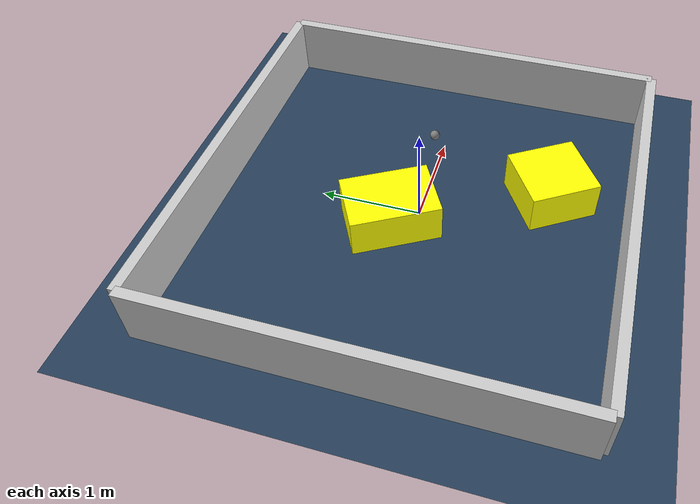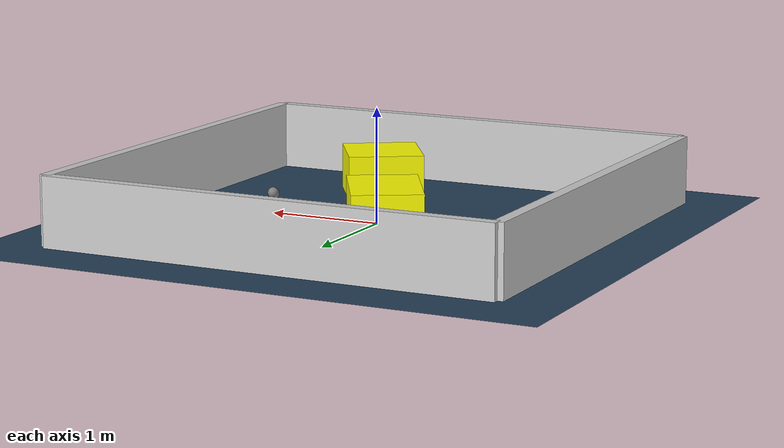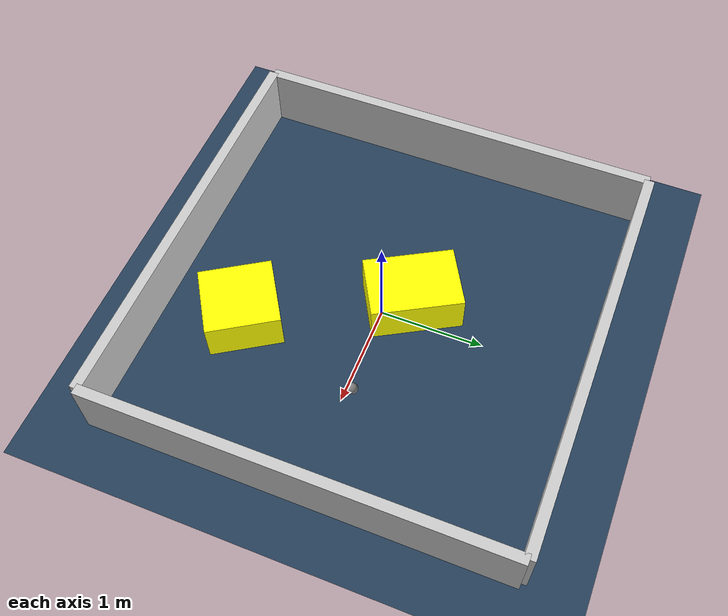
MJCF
<?xml version="1.0" ?>
<mujoco model="generated_environment">
  <option timestep="0.01" integrator="RK4" cone="elliptic"/>
  <default>
    <geom density="1"/>
  </default>
  <asset>
    <texture builtin="gradient" height="3072" rgb1="0.3 0.5 0.7" rgb2="0 0 0" type="skybox" width="512"/>
    <texture builtin="checker" height="300" mark="edge" markrgb="0.8 0.8 0.8" name="groundplane" rgb1="0.2 0.3 0.4" rgb2="0.1 0.2 0.3" type="2d" width="300"/>
    <material name="groundplane" reflectance="0.2" texrepeat="5 5" texture="groundplane" texuniform="true"/>
    <material name="robot" rgba="0.0 1.0 0.0 1"/>
  </asset>
  <worldbody>
    <light dir="0 0 -1" directional="true" pos="0 0 1.5"/>
    <geom condim="4" friction="1.0 0.005 0.001" material="groundplane" name="floor" size="0 0 0.05" type="plane"/>
    <body name="walls">
      <geom name="wall_1" condim="4" pos="-2.0 0.0 0.3" rgba="0.800000011920929 0.800000011920929 0.800000011920929 1.0" size="0.05 2.0 0.3" type="box"/>
      <geom name="wall_2" condim="4" pos="2.0 0.0 0.3" rgba="0.800000011920929 0.800000011920929 0.800000011920929 1.0" size="0.05 2.0 0.3" type="box"/>
      <geom name="wall_3" condim="4" pos="0.0 -2.0 0.3" rgba="0.800000011920929 0.800000011920929 0.800000011920929 1.0" size="2.0 0.05 0.3" type="box"/>
      <geom name="wall_4" condim="4" pos="0.0 2.0 0.3" rgba="0.800000011920929 0.800000011920929 0.800000011920929 1.0" size="2.0 0.05 0.3" type="box"/>
    </body>
    <body name="robot">
      <joint name="joint_x" type="slide" pos="0 0 0" axis="1 0 0"/>
      <joint name="joint_y" type="slide" pos="0 0 0" axis="0 1 0"/>
      <geom name="robot" type="sphere" pos="0.9500718418500589 0.09625367110683314 0.2" size="0.05" mass="5." friction="1.0 0.005 0.0001" condim="4"/>
      <site name="sensor_ball"/>
    </body>
    <body name="obstacle_1_movable">
      <geom name="obstacle_1_movable" condim="4" pos="-0.19174223400483026 0.2370543149778901 0.2" euler="0 0 119.6282706684938" friction="1.0 0.005 0.001" rgba="1 1 0 1" size="0.43555743420262016 0.3042053527754413 0.2" type="box" mass="0.1"/>
      <joint type="free"/>
    </body>
    <body name="obstacle_2_movable">
      <geom name="obstacle_2_movable" condim="4" pos="0.545590476795637 -1.19984519479952 0.2" euler="0 0 302.476657882705" friction="1.0 0.005 0.001" rgba="1 1 0 1" size="0.3479345455143808 0.33417755425717866 0.2" type="box" mass="0.1"/>
      <joint type="free"/>
    </body>
  </worldbody>
  <actuator>
    <motor name="actuator_x" joint="joint_x" gear="1" ctrlrange="-1 1"/>
    <motor name="actuator_y" joint="joint_y" gear="1" ctrlrange="-1 1"/>
  </actuator>
</mujoco>
